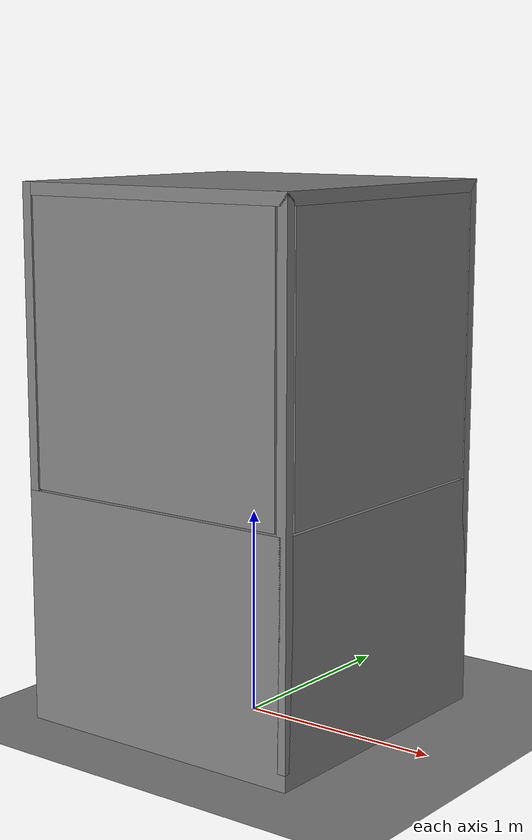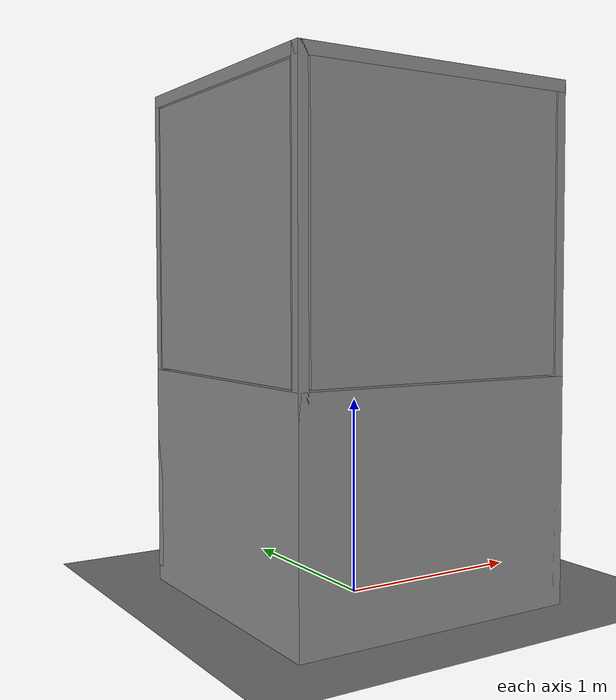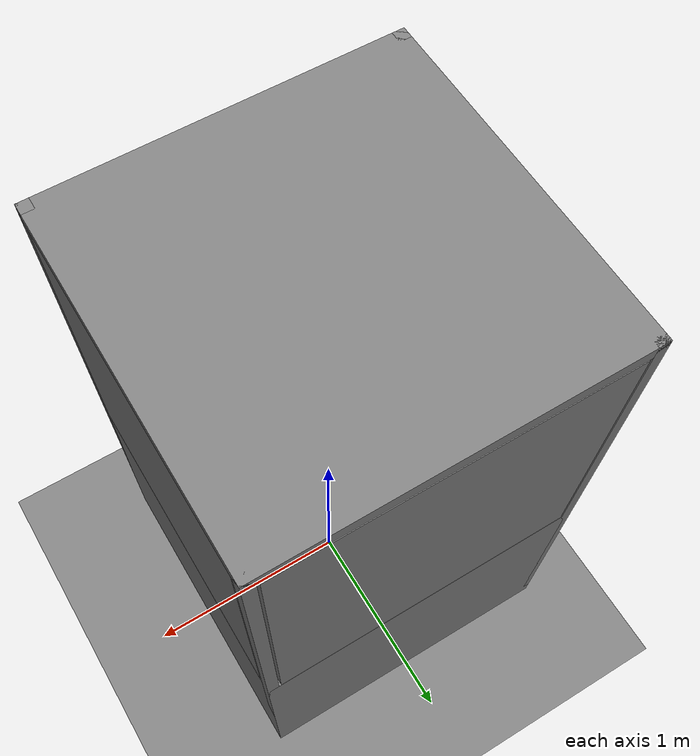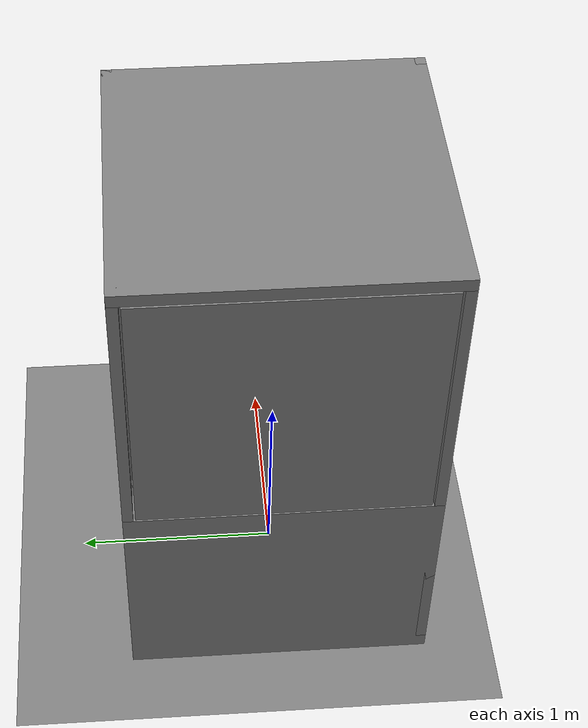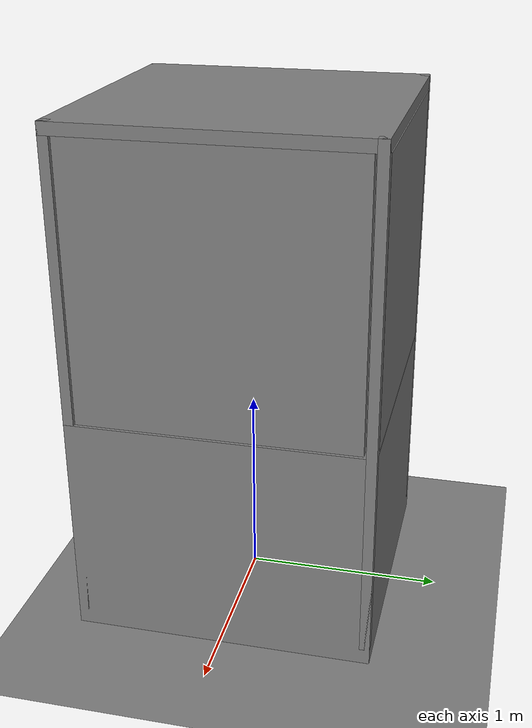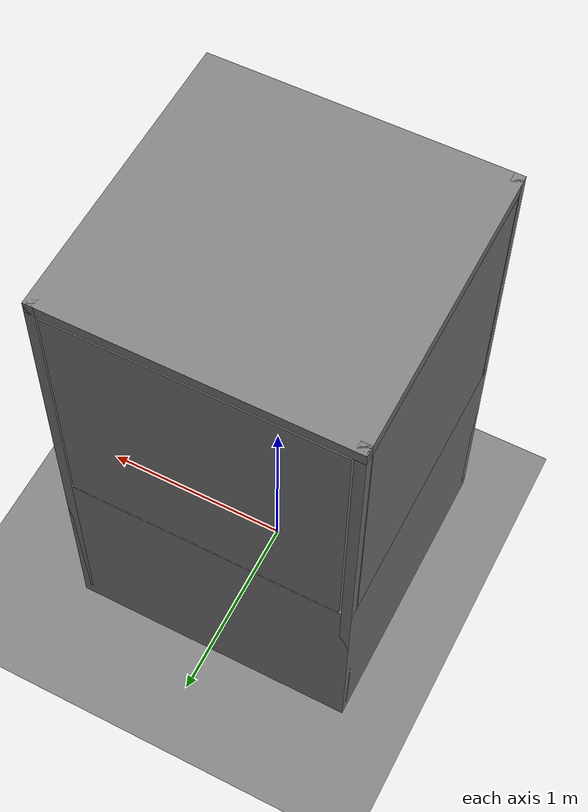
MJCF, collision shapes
<mujoco model="aic_world">
  <compiler angle="radian"/>

  <option gravity="0 0 -9.8" magnetic="5.5645e-06 2.28758e-05 -4.23884e-05"/>

  <visual>
    <headlight ambient="0 0 0" diffuse="0 0 0" specular="0 0 0"/>
  </visual>

  <default>
    <default class="world_default"/>
    <default class="cable_default">
      <joint damping="0.2"/>
    </default>
    <default class="sc_port_default">
      <geom friction="0.5 0.5"/>
    </default>
    <default class="nic_card_default">
      <geom friction="0.1 0.005 0.1"/>
    </default>
  </default>

  <extension>
    <plugin plugin="mujoco.elasticity.cable">
      <instance name="composite">
        <config key="twist" value="1e2"/>
        <config key="bend" value="4e1"/>
      </instance>
    </plugin>
  </extension>

  <asset>
    <texture type="2d" colorspace="linear" name="texture_40c09d03e70381a6858aaba3470a3c41133384b4031fa9131cbb5f4dc5cd3986_floor_visual_Plane" file="40c09d03e70381a6858aaba3470a3c41133384b4031fa9131cbb5f4dc5cd3986_floor_visual_b3a94635-54d6beff6424435d3828cb4c8a1278d9ea3964b0.png"/>
    <texture type="2d" colorspace="linear" name="texture_905de86c942092710a3b3b7c801a4a971c55ce1db8e8e66de2d222bccbf68920_sc_plug_visual_merged_0" file="905de86c942092710a3b3b7c801a4a971c55ce1db8e8e66de2d222bccbf68920_sc_plug_visual_5875f865-48f62b2f4840d852c7f39a01e6c183037dc1485b.png"/>
    <texture type="2d" colorspace="linear" name="texture_98c00f0bc914fd28942a5b5b497872ae817e62fdc7c7810ecaa8069a9692ceaf_lc_plug_visual_merged_0" file="98c00f0bc914fd28942a5b5b497872ae817e62fdc7c7810ecaa8069a9692ceaf_lc_plug_visual_03dabf32-0905e8a8aa368516e682f6ec84258100cdb4efef.png"/>
    <texture type="2d" colorspace="linear" name="texture_bac71237ef67393fcec4e1a5deb385aa5fe0d294b7e1711efc530aa1463ef5d6_sfp_module_visual_Body.005" file="bac71237ef67393fcec4e1a5deb385aa5fe0d294b7e1711efc530aa1463ef5d6_sfp_module_visual_8fc63b58-7471eafc55dcb668ae68adfe70a147b363ba3be9.png"/>
    <texture type="2d" colorspace="linear" name="texture_bac71237ef67393fcec4e1a5deb385aa5fe0d294b7e1711efc530aa1463ef5d6_sfp_module_visual_Body.005_1" file="bac71237ef67393fcec4e1a5deb385aa5fe0d294b7e1711efc530aa1463ef5d6_sfp_module_visual_1f09e86a-a4dc4a72bd6e778067310898a5c179607fd78966.png"/>
    <material name="material_e35a3160deff872a7475b59ee7dfb4969f85c5fc103de22f82442b320b077c85_enclosure_visual_V1014952.001" class="world_default" shininess="30" rgba="0.290196 0.290196 0.290196 1"/>
    <material name="material_e35a3160deff872a7475b59ee7dfb4969f85c5fc103de22f82442b320b077c85_enclosure_visual_V1014952.001_1" class="world_default" shininess="30" rgba="0.129412 0.129412 0.133333 1"/>
    <material name="material_e35a3160deff872a7475b59ee7dfb4969f85c5fc103de22f82442b320b077c85_light_visual_Plane.001" class="world_default" shininess="30" rgba="0.5 0.5 0.5 1"/>
    <material name="material_40c09d03e70381a6858aaba3470a3c41133384b4031fa9131cbb5f4dc5cd3986_floor_visual_Plane" class="world_default" texture="texture_40c09d03e70381a6858aaba3470a3c41133384b4031fa9131cbb5f4dc5cd3986_floor_visual_Plane" shininess="30" rgba="0.5 0.5 0.5 1"/>
    <material name="material_40c09d03e70381a6858aaba3470a3c41133384b4031fa9131cbb5f4dc5cd3986_walls_visual_Curve.001" class="world_default" shininess="30" rgba="0.0196078 0.0196078 0.0196078 1"/>
    <material name="material_40c09d03e70381a6858aaba3470a3c41133384b4031fa9131cbb5f4dc5cd3986_walls_visual_merged_1" class="world_default" shininess="30" rgba="0.262745 0.262745 0.262745 1"/>
    <material name="material_40c09d03e70381a6858aaba3470a3c41133384b4031fa9131cbb5f4dc5cd3986_walls_visual_Plane.003_1" class="world_default" shininess="30" rgba="0.8 0.8 0.8 1"/>
    <material name="material_40c09d03e70381a6858aaba3470a3c41133384b4031fa9131cbb5f4dc5cd3986_walls_visual_Plane.002" class="world_default" shininess="30" rgba="0.207843 0.207843 0.207843 1"/>
    <material name="material_7689a9b747d6b156977e79b2206b5e29540e3d66cde22b2879e5c8aaf9f30d90_base_visual_ISO_4762_-_M3_x_8.019" class="world_default" shininess="30" rgba="0.0352941 0.0352941 0.0313726 1"/>
    <material name="material_7689a9b747d6b156977e79b2206b5e29540e3d66cde22b2879e5c8aaf9f30d90_base_visual_ISO_4762_-_M3_x_8.019_1" class="world_default" shininess="30" rgba="0.0313726 0.0313726 0.0313726 1"/>
    <material name="material_7689a9b747d6b156977e79b2206b5e29540e3d66cde22b2879e5c8aaf9f30d90_base_visual_ISO_4762_-_M3_x_8.019_2" class="world_default" shininess="30" rgba="0.215686 0 0.215686 1"/>
    <material name="material_905de86c942092710a3b3b7c801a4a971c55ce1db8e8e66de2d222bccbf68920_sc_plug_visual_merged_0" class="world_default" texture="texture_905de86c942092710a3b3b7c801a4a971c55ce1db8e8e66de2d222bccbf68920_sc_plug_visual_merged_0" shininess="30" rgba="0.5 0.5 0.5 1"/>
    <material name="material_98c00f0bc914fd28942a5b5b497872ae817e62fdc7c7810ecaa8069a9692ceaf_lc_plug_visual_merged_0" class="world_default" texture="texture_98c00f0bc914fd28942a5b5b497872ae817e62fdc7c7810ecaa8069a9692ceaf_lc_plug_visual_merged_0" shininess="30" rgba="0.5 0.5 0.5 1"/>
    <material name="material_bac71237ef67393fcec4e1a5deb385aa5fe0d294b7e1711efc530aa1463ef5d6_sfp_module_visual_Body.005" class="world_default" texture="texture_bac71237ef67393fcec4e1a5deb385aa5fe0d294b7e1711efc530aa1463ef5d6_sfp_module_visual_Body.005" shininess="30" rgba="0.5 0.5 0.5 1"/>
    <material name="material_bac71237ef67393fcec4e1a5deb385aa5fe0d294b7e1711efc530aa1463ef5d6_sfp_module_visual_Body.005_1" class="world_default" texture="texture_bac71237ef67393fcec4e1a5deb385aa5fe0d294b7e1711efc530aa1463ef5d6_sfp_module_visual_Body.005_1" shininess="30" rgba="0.5 0.5 0.5 1"/>
    <mesh name="e35a3160deff872a7475b59ee7dfb4969f85c5fc103de22f82442b320b077c85_enclosure_visual_V1014952.001" class="world_default" content_type="model/obj" file="e35a3160deff872a7475b59ee7dfb4969f85c5fc103de22f82442b320b077c85_enclosure_visual_V1014952.001-c990efe7b9dfe87aa065fd6eb3960ce051ae2aef.obj" inertia="shell"/>
    <mesh name="e35a3160deff872a7475b59ee7dfb4969f85c5fc103de22f82442b320b077c85_enclosure_visual_V1014952.001_1" class="world_default" content_type="model/obj" file="e35a3160deff872a7475b59ee7dfb4969f85c5fc103de22f82442b320b077c85_enclosure_visual_V1014952.001_1-807e07de06af157c84b994a232617507a7059420.obj" inertia="shell"/>
    <mesh name="e35a3160deff872a7475b59ee7dfb4969f85c5fc103de22f82442b320b077c85_light_visual_Plane.001" class="world_default" content_type="model/obj" file="e35a3160deff872a7475b59ee7dfb4969f85c5fc103de22f82442b320b077c85_light_visual_Plane.001-a8a774a80bc239d73769a498eae528b206eebcb0.obj" inertia="shell"/>
    <mesh name="40c09d03e70381a6858aaba3470a3c41133384b4031fa9131cbb5f4dc5cd3986_floor_visual_Plane" class="world_default" content_type="model/obj" file="40c09d03e70381a6858aaba3470a3c41133384b4031fa9131cbb5f4dc5cd3986_floor_visual_Plane-4dc7f6150ad7c239769a0860a01efb2015657aea.obj" inertia="shell"/>
    <mesh name="40c09d03e70381a6858aaba3470a3c41133384b4031fa9131cbb5f4dc5cd3986_walls_visual_Curve.001" class="world_default" content_type="model/obj" file="40c09d03e70381a6858aaba3470a3c41133384b4031fa9131cbb5f4dc5cd3986_walls_visual_Curve.001-4d7c79ac2e958832fdb15589262141ca1b80d3a5.obj" inertia="shell"/>
    <mesh name="40c09d03e70381a6858aaba3470a3c41133384b4031fa9131cbb5f4dc5cd3986_walls_visual_merged_1" class="world_default" content_type="model/obj" file="40c09d03e70381a6858aaba3470a3c41133384b4031fa9131cbb5f4dc5cd3986_walls_visual_merged_1-359a22140d528747936e80bedf90e1437a177a9f.obj" inertia="shell"/>
    <mesh name="40c09d03e70381a6858aaba3470a3c41133384b4031fa9131cbb5f4dc5cd3986_walls_visual_Plane.003_1" class="world_default" content_type="model/obj" file="40c09d03e70381a6858aaba3470a3c41133384b4031fa9131cbb5f4dc5cd3986_walls_visual_Plane.003_1-cd05ed21fa19a2784fb772d7519abf7c31c8b85f.obj" inertia="shell"/>
    <mesh name="40c09d03e70381a6858aaba3470a3c41133384b4031fa9131cbb5f4dc5cd3986_walls_visual_Plane.002" class="world_default" content_type="model/obj" file="40c09d03e70381a6858aaba3470a3c41133384b4031fa9131cbb5f4dc5cd3986_walls_visual_Plane.002-ee4f781765eec46c2256d941981732d4b1857f24.obj" inertia="shell"/>
    <mesh name="7689a9b747d6b156977e79b2206b5e29540e3d66cde22b2879e5c8aaf9f30d90_base_visual_ISO_4762_-_M3_x_8.019" class="world_default" content_type="model/obj" file="7689a9b747d6b156977e79b2206b5e29540e3d66cde22b2879e5c8aaf9f30d90_base_visual_ISO_4762_-_M3_x_8.019-f814bb518c42769543ab6246809f3fe4af5c2b64.obj" inertia="shell"/>
    <mesh name="7689a9b747d6b156977e79b2206b5e29540e3d66cde22b2879e5c8aaf9f30d90_base_visual_ISO_4762_-_M3_x_8.019_1" class="world_default" content_type="model/obj" file="7689a9b747d6b156977e79b2206b5e29540e3d66cde22b2879e5c8aaf9f30d90_base_visual_ISO_4762_-_M3_x_8.019_1-0b276ba9910a7642121235b62d2afc47c3995782.obj" inertia="shell"/>
    <mesh name="7689a9b747d6b156977e79b2206b5e29540e3d66cde22b2879e5c8aaf9f30d90_base_visual_ISO_4762_-_M3_x_8.019_2" class="world_default" content_type="model/obj" file="7689a9b747d6b156977e79b2206b5e29540e3d66cde22b2879e5c8aaf9f30d90_base_visual_ISO_4762_-_M3_x_8.019_2-7b96569be9572803417c5650ee83c9c883b44191.obj" inertia="shell"/>
    <mesh name="905de86c942092710a3b3b7c801a4a971c55ce1db8e8e66de2d222bccbf68920_sc_plug_visual_merged_0" class="world_default" content_type="model/obj" file="905de86c942092710a3b3b7c801a4a971c55ce1db8e8e66de2d222bccbf68920_sc_plug_visual_merged_0-67f94accf247f722dd4954d7448d7956402901f2.obj" inertia="shell"/>
    <mesh name="98c00f0bc914fd28942a5b5b497872ae817e62fdc7c7810ecaa8069a9692ceaf_lc_plug_visual_merged_0" class="world_default" content_type="model/obj" file="98c00f0bc914fd28942a5b5b497872ae817e62fdc7c7810ecaa8069a9692ceaf_lc_plug_visual_merged_0-fdaf59710fc3cc118a7df05add4ff4205edda4ef.obj" inertia="shell"/>
    <mesh name="bac71237ef67393fcec4e1a5deb385aa5fe0d294b7e1711efc530aa1463ef5d6_sfp_module_visual_Body.005" class="world_default" content_type="model/obj" file="bac71237ef67393fcec4e1a5deb385aa5fe0d294b7e1711efc530aa1463ef5d6_sfp_module_visual_Body.005-f93147e1e403de321fb70c06a4b1e00f20feb9fd.obj" inertia="shell"/>
    <mesh name="bac71237ef67393fcec4e1a5deb385aa5fe0d294b7e1711efc530aa1463ef5d6_sfp_module_visual_Body.005_1" class="world_default" content_type="model/obj" file="bac71237ef67393fcec4e1a5deb385aa5fe0d294b7e1711efc530aa1463ef5d6_sfp_module_visual_Body.005_1-4af964a95522e2593eb6381eca4f09ef239782c7.obj" inertia="shell"/>
  </asset>

  <worldbody>
    <light name="enclosure_light" class="world_default" pos="0 0 2.5" dir="0 0 -1" intensity="0.4" range="2" attenuation="1 0.01 0.001" cutoff="114.592" exponent="0.993023" diffuse="1 1 1" specular="0.1 0.1 0.1"/>
    <light name="ceiling_01" class="world_default" pos="2 2 6" dir="0 0 -1" intensity="2" range="9" castshadow="false" attenuation="1 0.01 0.001" cutoff="360" diffuse="1 1 1" specular="0.1 0.1 0.1"/>
    <light name="ceiling_02" class="world_default" pos="-2 -2 6" dir="0 0 -1" intensity="2" range="9" castshadow="false" attenuation="1 0.01 0.001" cutoff="360" diffuse="1 1 1" specular="0.1 0.1 0.1"/>
    <body name="enclosure_link">
      <inertial pos="0 0 0" mass="1" diaginertia="1 1 1"/>
      <geom name="v1015026001_collider_box" class="world_default" size="0.75 0.569492 0.75" pos="-0.010998 0.009283 0.569706" quat="1.22475e-07 -1.22474e-07 0.707107 0.707107" type="box" group="3"/>
      <geom name="v1015028001_collider_box" class="world_default" size="0.0254 0.0254 1.25" pos="0.713602 0.733883 1.3292" quat="1.73205e-07 0 0 -1" type="box" group="3"/>
      <geom name="v1015013001_collider_box" class="world_default" size="0.0304 0.75 0.75" pos="-0.010998 0.009283 2.5488" quat="0.707107 0 -0.707107 0" type="box" group="3"/>
      <geom name="v1015027_collider_box" class="world_default" size="0.0254 0.0254 1.25" pos="-0.735598 0.733883 1.3292" quat="1.73205e-07 0 0 -1" type="box" group="3"/>
      <geom name="v1015029_collider_box" class="world_default" size="0.0254 0.0254 1.25" pos="-0.735598 -0.715317 1.3292" quat="0 1.73205e-07 -1 -1.73205e-07" type="box" group="3"/>
      <geom name="v1015030_collider_box" class="world_default" size="0.0254 0.0254 1.25" pos="0.713602 -0.715317 1.3292" quat="1.73205e-07 0 0 -1" type="box" group="3"/>
      <geom name="enclosure_visual" class="world_default" type="mesh" contype="0" conaffinity="0" material="material_e35a3160deff872a7475b59ee7dfb4969f85c5fc103de22f82442b320b077c85_enclosure_visual_V1014952.001" mesh="e35a3160deff872a7475b59ee7dfb4969f85c5fc103de22f82442b320b077c85_enclosure_visual_V1014952.001"/>
      <geom name="enclosure_visual_0" class="world_default" type="mesh" contype="0" conaffinity="0" material="material_e35a3160deff872a7475b59ee7dfb4969f85c5fc103de22f82442b320b077c85_enclosure_visual_V1014952.001_1" mesh="e35a3160deff872a7475b59ee7dfb4969f85c5fc103de22f82442b320b077c85_enclosure_visual_V1014952.001_1"/>
      <geom name="light_visual" class="world_default" type="mesh" contype="0" conaffinity="0" material="material_e35a3160deff872a7475b59ee7dfb4969f85c5fc103de22f82442b320b077c85_light_visual_Plane.001" mesh="e35a3160deff872a7475b59ee7dfb4969f85c5fc103de22f82442b320b077c85_light_visual_Plane.001"/>
    </body>
    <body name="enclosure_walls_link">
      <inertial pos="0 0 0" mass="1" diaginertia="1 1 1"/>
      <geom name="v1015062006_collider_box" class="world_default" size="0.0250005 0.6796 0.6892" pos="-0.010998 0.734284 1.8288" quat="0.5 0.5 -0.5 -0.5" type="box" group="3"/>
      <geom name="v1015062005_collider_box" class="world_default" size="0.6892 0.6796 0.025" pos="-0.735998 0.009283 1.8288" quat="0.5 0.5 -0.5 -0.5" type="box" group="3"/>
      <geom name="v1015062007_collider_box" class="world_default" size="0.025 0.6846 0.6892" pos="-0.010998 -0.715717 1.8338" quat="0.5 0.5 -0.5 -0.5" type="box" group="3"/>
      <geom name="v1015062008_collider_box" class="world_default" size="0.6892 0.6846 0.025" pos="0.714002 0.009283 1.8338" quat="0.5 0.5 -0.5 -0.5" type="box" group="3"/>
    </body>
    <body name="floor_link">
      <inertial pos="0 0 0" mass="1" diaginertia="1 1 1"/>
      <geom name="floor_cylinder" class="world_default" size="5 5 1" type="plane" group="3"/>
      <geom name="floor_visual" class="world_default" type="mesh" contype="0" conaffinity="0" material="material_40c09d03e70381a6858aaba3470a3c41133384b4031fa9131cbb5f4dc5cd3986_floor_visual_Plane" mesh="40c09d03e70381a6858aaba3470a3c41133384b4031fa9131cbb5f4dc5cd3986_floor_visual_Plane"/>
      <geom name="walls_visual" class="world_default" type="mesh" contype="0" conaffinity="0" material="material_40c09d03e70381a6858aaba3470a3c41133384b4031fa9131cbb5f4dc5cd3986_walls_visual_Curve.001" mesh="40c09d03e70381a6858aaba3470a3c41133384b4031fa9131cbb5f4dc5cd3986_walls_visual_Curve.001"/>
      <geom name="walls_visual_0" class="world_default" type="mesh" contype="0" conaffinity="0" material="material_40c09d03e70381a6858aaba3470a3c41133384b4031fa9131cbb5f4dc5cd3986_walls_visual_merged_1" mesh="40c09d03e70381a6858aaba3470a3c41133384b4031fa9131cbb5f4dc5cd3986_walls_visual_merged_1"/>
      <geom name="walls_visual_1" class="world_default" type="mesh" contype="0" conaffinity="0" material="material_40c09d03e70381a6858aaba3470a3c41133384b4031fa9131cbb5f4dc5cd3986_walls_visual_Plane.003_1" mesh="40c09d03e70381a6858aaba3470a3c41133384b4031fa9131cbb5f4dc5cd3986_walls_visual_Plane.003_1"/>
      <geom name="walls_visual_2" class="world_default" type="mesh" contype="0" conaffinity="0" material="material_40c09d03e70381a6858aaba3470a3c41133384b4031fa9131cbb5f4dc5cd3986_walls_visual_Plane.002" mesh="40c09d03e70381a6858aaba3470a3c41133384b4031fa9131cbb5f4dc5cd3986_walls_visual_Plane.002"/>
    </body>
    <body name="task_board_base_link" pos="0.15 -0.2 1.14" quat="4.63268e-05 0 0 1">
      <inertial pos="0 0 0" mass="5" diaginertia="0.1 0.1 0.1"/>
      <geom name="task_board_base_link_fixed_joint_lump__v1015083001_collider_box_left_collision" class="world_default" size="0.15 0.114 0.0045" pos="0 -0.1 0.0075" type="box" group="3"/>
      <geom name="task_board_base_link_fixed_joint_lump__v1015083001_collider_right_collision_1" class="world_default" size="0.15 0.0635 0.0045" pos="0 0.149 0.0075" type="box" group="3"/>
      <geom name="task_board_base_link_fixed_joint_lump__v1015083001_collider_mid_collision_2" class="world_default" size="0.07 0.006 0.0045" pos="-0.075 0.05 0.0075" type="box" group="3"/>
      <geom name="task_board_base_link_fixed_joint_lump__v1015083001_collider_bottom_collision_3" class="world_default" size="0.0825 0.2125 0.0045" pos="0.068 0 0.0075" type="box" group="3"/>
      <geom name="task_board_base_link_fixed_joint_lump__v1015083001_collider_top_collision_4" class="world_default" size="0.0075 0.2125 0.0045" pos="-0.143 0 0.0075" type="box" group="3"/>
      <geom name="task_board_base_link_fixed_joint_lump__base_visual_visual" class="world_default" type="mesh" contype="0" conaffinity="0" material="material_7689a9b747d6b156977e79b2206b5e29540e3d66cde22b2879e5c8aaf9f30d90_base_visual_ISO_4762_-_M3_x_8.019" mesh="7689a9b747d6b156977e79b2206b5e29540e3d66cde22b2879e5c8aaf9f30d90_base_visual_ISO_4762_-_M3_x_8.019"/>
      <geom name="task_board_base_link_fixed_joint_lump__base_visual_visual_0" class="world_default" type="mesh" contype="0" conaffinity="0" material="material_7689a9b747d6b156977e79b2206b5e29540e3d66cde22b2879e5c8aaf9f30d90_base_visual_ISO_4762_-_M3_x_8.019_1" mesh="7689a9b747d6b156977e79b2206b5e29540e3d66cde22b2879e5c8aaf9f30d90_base_visual_ISO_4762_-_M3_x_8.019_1"/>
      <geom name="task_board_base_link_fixed_joint_lump__base_visual_visual_1" class="world_default" type="mesh" contype="0" conaffinity="0" material="material_7689a9b747d6b156977e79b2206b5e29540e3d66cde22b2879e5c8aaf9f30d90_base_visual_ISO_4762_-_M3_x_8.019_2" mesh="7689a9b747d6b156977e79b2206b5e29540e3d66cde22b2879e5c8aaf9f30d90_base_visual_ISO_4762_-_M3_x_8.019_2"/>
    </body>
    <body name="cable_end_0" childclass="cable_default" pos="0.171400 0.020606 1.511889" quat="0.712741 0.312130 -0.052173 0.625982">
      <freejoint name="cable_end_0_free"/>
      <inertial pos="0 0 0" mass="0.0025" diaginertia="1e-6 1e-6 1e-6"/>
      <geom name="base_vis" class="world_default" size="0.002" contype="0" conaffinity="0"/>
      <plugin instance="composite"/>
      <body name="cable_connection_0" pos="-2.51823e-08 2.30342e-08 -1.45448e-07" quat="0.923929 -0.0911744 -0.331114 0.168542">
        <inertial pos="0 0 0" mass="0.01" diaginertia="1e-6 1e-6 1e-6"/>
        <joint name="joint_connection_end_0" class="world_default" pos="0 0 0" type="ball" damping="0.2"/>
        <geom name="visual_0_0" class="world_default" size="0.001 0.00180278" pos="-0.00180278 0.002 0" quat="0.676768 0.204909 0.676764 -0.204908" type="cylinder" contype="0" conaffinity="0"/>
        <geom name="visual_1_0" class="world_default" size="0.001 0.00180278" pos="-0.00180278 -0.002 0" quat="0.676768 -0.204909 0.676764 0.204908" type="cylinder" contype="0" conaffinity="0"/>
        <plugin instance="composite"/>
        <body name="link_1" pos="0.00184055 -0.00570813 -0.0232387" quat="-0.0695478 -0.267513 -0.955287 0.10501">
          <inertial pos="0 0 0" mass="0.0025" diaginertia="1e-6 1e-6 1e-6"/>
          <joint name="joint_end_0" pos="0 0 -0.024" type="ball"/>
          <geom name="link_1_collision" size="0.002 0.018" pos="0 0 0.006" type="cylinder" group="3"/>
          <geom name="sphere_1_collision" size="0.002" pos="0 0 0.024" group="3"/>
          <geom name="link_1_vis" size="0.002 0.024" type="cylinder" contype="0" conaffinity="0"/>
          <geom name="sphere_1_vis" size="0.002" pos="0 0 0.024" contype="0" conaffinity="0"/>
          <plugin instance="composite"/>
          <body name="link_2" pos="0.00619166 -0.007594 0.0459092" quat="0.977748 0.158888 0.135349 -0.021091">
            <inertial pos="0 0 0" mass="0.0025" diaginertia="1e-6 1e-6 1e-6"/>
            <joint name="joint_1" pos="0 0 -0.024" type="ball"/>
            <geom name="link_2_collision" size="0.002 0.024" type="cylinder" group="3"/>
            <geom name="sphere_2_collision" size="0.002" pos="0 0 0.024" group="3"/>
            <geom name="link_2_vis" size="0.002 0.024" type="cylinder" contype="0" conaffinity="0"/>
            <geom name="sphere_2_vis" size="0.002" pos="0 0 0.024" contype="0" conaffinity="0"/>
            <plugin instance="composite"/>
            <body name="link_3" pos="0.000453465 -0.00664208 0.0470584" quat="0.989911 0.139514 0.0125391 -0.0213206">
              <inertial pos="0 0 0" mass="0.0025" diaginertia="1e-6 1e-6 1e-6"/>
              <joint name="joint_2" pos="0 0 -0.024" type="ball"/>
              <geom name="link_3_collision" size="0.002 0.024" type="cylinder" group="3"/>
              <geom name="sphere_3_collision" size="0.002" pos="0 0 0.024" group="3"/>
              <geom name="link_3_vis" size="0.002 0.024" type="cylinder" contype="0" conaffinity="0"/>
              <geom name="sphere_3_vis" size="0.002" pos="0 0 0.024" contype="0" conaffinity="0"/>
              <plugin instance="composite"/>
              <body name="link_4" pos="-0.00213422 -0.0046216 0.0474541" quat="0.993997 0.0979034 -0.0423383 -0.0243497">
                <inertial pos="0 0 0" mass="0.0025" diaginertia="1e-6 1e-6 1e-6"/>
                <joint name="joint_3" pos="0 0 -0.024" type="ball"/>
                <geom name="link_4_collision" size="0.002 0.024" type="cylinder" group="3"/>
                <geom name="sphere_4_collision" size="0.002" pos="0 0 0.024" group="3"/>
                <geom name="link_4_vis" size="0.002 0.024" type="cylinder" contype="0" conaffinity="0"/>
                <geom name="sphere_4_vis" size="0.002" pos="0 0 0.024" contype="0" conaffinity="0"/>
                <plugin instance="composite"/>
                <body name="link_5" pos="-0.00362244 -0.00309285 0.0475231" quat="0.994224 0.0677278 -0.0732001 -0.0396564">
                  <inertial pos="0 0 0" mass="0.0025" diaginertia="1e-6 1e-6 1e-6"/>
                  <joint name="joint_4" pos="0 0 -0.024" type="ball"/>
                  <geom name="link_5_collision" size="0.002 0.024" type="cylinder" group="3"/>
                  <geom name="sphere_5_collision" size="0.002" pos="0 0 0.024" group="3"/>
                  <geom name="link_5_vis" size="0.002 0.024" type="cylinder" contype="0" conaffinity="0"/>
                  <geom name="sphere_5_vis" size="0.002" pos="0 0 0.024" contype="0" conaffinity="0"/>
                  <plugin instance="composite"/>
                  <body name="link_6" pos="-0.00395641 -0.00175917 0.0476065" quat="0.993905 0.0419546 -0.0802995 -0.0627996">
                    <inertial pos="0 0 0" mass="0.0025" diaginertia="1e-6 1e-6 1e-6"/>
                    <joint name="joint_5" pos="0 0 -0.024" type="ball"/>
                    <geom name="link_6_collision" size="0.002 0.024" type="cylinder" group="3"/>
                    <geom name="sphere_6_collision" size="0.002" pos="0 0 0.024" group="3"/>
                    <geom name="link_6_vis" size="0.002 0.024" type="cylinder" contype="0" conaffinity="0"/>
                    <geom name="sphere_6_vis" size="0.002" pos="0 0 0.024" contype="0" conaffinity="0"/>
                    <plugin instance="composite"/>
                    <body name="link_7" pos="-0.00349799 -0.000692972 0.0477341" quat="0.993477 0.0207436 -0.0715523 -0.0863283">
                      <inertial pos="0 0 0" mass="0.0025" diaginertia="1e-6 1e-6 1e-6"/>
                      <joint name="joint_6" pos="0 0 -0.024" type="ball"/>
                      <geom name="link_7_collision" size="0.002 0.024" type="cylinder" group="3"/>
                      <geom name="sphere_7_collision" size="0.002" pos="0 0 0.024" group="3"/>
                      <geom name="link_7_vis" size="0.002 0.024" type="cylinder" contype="0" conaffinity="0"/>
                      <geom name="sphere_7_vis" size="0.002" pos="0 0 0.024" contype="0" conaffinity="0"/>
                      <plugin instance="composite"/>
                      <body name="link_8" pos="-0.00243347 0.000187096 0.0478763" quat="0.9935 0.00128573 -0.0509006 -0.101812">
                        <inertial pos="0 0 0" mass="0.0025" diaginertia="1e-6 1e-6 1e-6"/>
                        <joint name="joint_7" pos="0 0 -0.024" type="ball"/>
                        <geom name="link_8_collision" size="0.002 0.024" type="cylinder" group="3"/>
                        <geom name="sphere_8_collision" size="0.002" pos="0 0 0.024" group="3"/>
                        <geom name="link_8_vis" size="0.002 0.024" type="cylinder" contype="0" conaffinity="0"/>
                        <geom name="sphere_8_vis" size="0.002" pos="0 0 0.024" contype="0" conaffinity="0"/>
                        <plugin instance="composite"/>
                        <body name="link_9" pos="-0.00122243 0.000954258 0.0479511" quat="0.994042 -0.017131 -0.0274124 -0.104092">
                          <inertial pos="0 0 0" mass="0.0025" diaginertia="1e-6 1e-6 1e-6"/>
                          <joint name="joint_8" pos="0 0 -0.024" type="ball"/>
                          <geom name="link_9_collision" size="0.002 0.024" type="cylinder" group="3"/>
                          <geom name="sphere_9_collision" size="0.002" pos="0 0 0.024" group="3"/>
                          <geom name="link_9_vis" size="0.002 0.024" type="cylinder" contype="0" conaffinity="0"/>
                          <geom name="sphere_9_vis" size="0.002" pos="0 0 0.024" contype="0" conaffinity="0"/>
                          <plugin instance="composite"/>
                          <body name="link_10" pos="-0.000355132 0.00167421 0.0479391" quat="0.994816 -0.0340205 -0.0107017 -0.0952336">
                            <inertial pos="0 0 0" mass="0.0025" diaginertia="1e-6 1e-6 1e-6"/>
                            <joint name="joint_9" pos="0 0 -0.024" type="ball"/>
                            <geom name="link_10_collision" size="0.002 0.024" type="cylinder" group="3"/>
                            <geom name="sphere_10_collision" size="0.002" pos="0 0 0.024" group="3"/>
                            <geom name="link_10_vis" size="0.002 0.024" type="cylinder" contype="0" conaffinity="0"/>
                            <geom name="sphere_10_vis" size="0.002" pos="0 0 0.024" contype="0" conaffinity="0"/>
                            <plugin instance="composite"/>
                            <body name="link_11" pos="0.00118961 0.0025498 0.0478357" quat="0.994081 -0.0552609 0.0198395 -0.0914086">
                              <inertial pos="0 0 0" mass="0.0025" diaginertia="1e-6 1e-6 1e-6"/>
                              <joint name="joint_10" pos="0 0 -0.024" type="ball"/>
                              <geom name="link_11_collision" size="0.002 0.024" type="cylinder" group="3"/>
                              <geom name="sphere_11_collision" size="0.002" pos="0 0 0.024" group="3"/>
                              <geom name="link_11_vis" size="0.002 0.024" type="cylinder" contype="0" conaffinity="0"/>
                              <geom name="sphere_11_vis" size="0.002" pos="0 0 0.024" contype="0" conaffinity="0"/>
                              <plugin instance="composite"/>
                              <body name="link_12" pos="0.00318571 0.00405833 0.0474406" quat="0.991805 -0.08942 0.060775 -0.0680681">
                                <inertial pos="0 0 0" mass="0.0025" diaginertia="1e-6 1e-6 1e-6"/>
                                <joint name="joint_11" pos="0 0 -0.024" type="ball"/>
                                <geom name="link_12_collision" size="0.002 0.024" type="cylinder" group="3"/>
                                <geom name="sphere_12_collision" size="0.002" pos="0 0 0.024" group="3"/>
                                <geom name="link_12_vis" size="0.002 0.024" type="cylinder" contype="0" conaffinity="0"/>
                                <geom name="sphere_12_vis" size="0.002" pos="0 0 0.024" contype="0" conaffinity="0"/>
                                <plugin instance="composite"/>
                                <body name="link_13" pos="0.00474312 0.00581226 0.0467979" quat="0.986544 -0.126678 0.094879 -0.0410051">
                                  <inertial pos="0 0 0" mass="0.0025" diaginertia="1e-6 1e-6 1e-6"/>
                                  <joint name="joint_12" pos="0 0 -0.024" type="ball"/>
                                  <geom name="link_13_collision" size="0.002 0.024" type="cylinder" group="3"/>
                                  <geom name="sphere_13_collision" size="0.002" pos="0 0 0.024" group="3"/>
                                  <geom name="link_13_vis" size="0.002 0.024" type="cylinder" contype="0" conaffinity="0"/>
                                  <geom name="sphere_13_vis" size="0.002" pos="0 0 0.024" contype="0" conaffinity="0"/>
                                  <plugin instance="composite"/>
                                  <body name="link_14" pos="0.00583709 0.00735623 0.0460876" quat="0.979761 -0.158202 0.121792 -0.0143789">
                                    <inertial pos="0 0 0" mass="0.0025" diaginertia="1e-6 1e-6 1e-6"/>
                                    <joint name="joint_13" pos="0 0 -0.024" type="ball"/>
                                    <geom name="link_14_collision" size="0.002 0.024" type="cylinder" group="3"/>
                                    <geom name="sphere_14_collision" size="0.002" pos="0 0 0.024" group="3"/>
                                    <geom name="link_14_vis" size="0.002 0.024" type="cylinder" contype="0" conaffinity="0"/>
                                    <geom name="sphere_14_vis" size="0.002" pos="0 0 0.024" contype="0" conaffinity="0"/>
                                    <plugin instance="composite"/>
                                    <body name="link_15" pos="0.00656851 0.00807907 0.0456243" quat="0.974892 -0.171279 0.141991 0.00935219">
                                      <inertial pos="0 0 0" mass="0.0025" diaginertia="1e-6 1e-6 1e-6"/>
                                      <joint name="joint_14" pos="0 0 -0.024" type="ball"/>
                                      <geom name="link_15_collision" size="0.002 0.024" type="cylinder" group="3"/>
                                      <geom name="sphere_15_collision" size="0.002" pos="0 0 0.024" group="3"/>
                                      <geom name="link_15_vis" size="0.002 0.024" type="cylinder" contype="0" conaffinity="0"/>
                                      <geom name="sphere_15_vis" size="0.002" pos="0 0 0.024" contype="0" conaffinity="0"/>
                                      <plugin instance="composite"/>
                                      <body name="link_16" pos="0.0068571 0.00761915 0.0457024" quat="0.975354 -0.158433 0.151003 0.0279416">
                                        <inertial pos="0 0 0" mass="0.0025" diaginertia="1e-6 1e-6 1e-6"/>
                                        <joint name="joint_15" pos="0 0 -0.024" type="ball"/>
                                        <geom name="link_16_collision" size="0.002 0.024" type="cylinder" group="3"/>
                                        <geom name="sphere_16_collision" size="0.002" pos="0 0 0.024" group="3"/>
                                        <geom name="link_16_vis" size="0.002 0.024" type="cylinder" contype="0" conaffinity="0"/>
                                        <geom name="sphere_16_vis" size="0.002" pos="0 0 0.024" contype="0" conaffinity="0"/>
                                        <plugin instance="composite"/>
                                        <body name="link_17" pos="0.00677513 0.00603483 0.0462207" quat="0.980465 -0.122145 0.148914 0.0399162">
                                          <inertial pos="0 0 0" mass="0.0025" diaginertia="1e-6 1e-6 1e-6"/>
                                          <joint name="joint_16" pos="0 0 -0.024" type="ball"/>
                                          <geom name="link_17_collision" size="0.002 0.024" type="cylinder" group="3"/>
                                          <geom name="sphere_17_collision" size="0.002" pos="0 0 0.024" group="3"/>
                                          <geom name="link_17_vis" size="0.002 0.024" type="cylinder" contype="0" conaffinity="0"/>
                                          <geom name="sphere_17_vis" size="0.002" pos="0 0 0.024" contype="0" conaffinity="0"/>
                                          <plugin instance="composite"/>
                                          <body name="link_18" pos="0.006417 0.0035907 0.0468459" quat="0.986928 -0.0696099 0.13856 0.0439204">
                                            <inertial pos="0 0 0" mass="0.0025" diaginertia="1e-6 1e-6 1e-6"/>
                                            <joint name="joint_17" pos="0 0 -0.024" type="ball"/>
                                            <geom name="link_18_collision" size="0.002 0.024" type="cylinder" group="3"/>
                                            <geom name="sphere_18_collision" size="0.002" pos="0 0 0.024" group="3"/>
                                            <geom name="link_18_vis" size="0.002 0.024" type="cylinder" contype="0" conaffinity="0"/>
                                            <geom name="sphere_18_vis" size="0.002" pos="0 0 0.024" contype="0" conaffinity="0"/>
                                            <plugin instance="composite"/>
                                            <body name="link_19" pos="0.00642662 0.00141794 0.0470814" quat="0.989625 -0.0245773 0.136245 0.0384068">
                                              <inertial pos="0 0 0" mass="0.0025" diaginertia="1e-6 1e-6 1e-6"/>
                                              <joint name="joint_18" pos="0 0 -0.024" type="ball"/>
                                              <geom name="link_19_collision" size="0.002 0.024" type="cylinder" group="3"/>
                                              <geom name="sphere_19_collision" size="0.002" pos="0 0 0.024" group="3"/>
                                              <geom name="link_19_vis" size="0.002 0.024" type="cylinder" contype="0" conaffinity="0"/>
                                              <geom name="sphere_19_vis" size="0.002" pos="0 0 0.024" contype="0" conaffinity="0"/>
                                              <plugin instance="composite"/>
                                              <body name="link_20" pos="0.0059676 -0.00101977 0.0472259" quat="0.991487 0.0249643 0.124671 0.0280479">
                                                <inertial pos="0 0 0" mass="0.0025" diaginertia="1e-6 1e-6 1e-6"/>
                                                <joint name="joint_19" pos="0 0 -0.024" type="ball"/>
                                                <geom name="link_20_collision" size="0.002 0.024" type="cylinder" group="3"/>
                                                <geom name="sphere_20_collision" size="0.002" pos="0 0 0.024" group="3"/>
                                                <geom name="link_20_vis" size="0.002 0.024" type="cylinder" contype="0" conaffinity="0"/>
                                                <geom name="sphere_20_vis" size="0.002" pos="0 0 0.024" contype="0" conaffinity="0"/>
                                                <plugin instance="composite"/>
                                                <body name="cable_connection_1" pos="1.04765e-06 -3.88165e-07 0.0240001" quat="0.778256 0.058659 -0.623948 -0.0395561">
                                                  <inertial pos="0 0 0" mass="0.01" diaginertia="1e-6 1e-6 1e-6"/>
                                                  <joint name="joint_connection_end_1" class="world_default" pos="0 0 0" type="ball"/>
                                                  <geom name="collision_0" class="world_default" size="0.001 0.00367636" pos="0.00367636 -0.00425 0" quat="0.673802 0.214463 0.673798 -0.214461" type="cylinder" group="3"/>
                                                  <geom name="collision_1" class="world_default" size="0.001 0.00367636" pos="0.00367636 0.00425 0" quat="0.673802 -0.214463 0.673798 0.214461" type="cylinder" group="3"/>
                                                  <geom name="visual_0" class="world_default" size="0.001 0.00367636" pos="0.00367636 -0.00425 0" quat="0.673802 0.214463 0.673798 -0.214461" type="cylinder" contype="0" conaffinity="0"/>
                                                  <geom name="visual_1" class="world_default" size="0.001 0.00367636" pos="0.00367636 0.00425 0" quat="0.673802 -0.214463 0.673798 0.214461" type="cylinder" contype="0" conaffinity="0"/>
                                                  <plugin instance="composite"/>
                                                  <body name="sc_plug_link" pos="0.052 6.25358e-08 6.87613e-08" quat="1 1.44978e-07 -7.34407e-09 -6.12369e-08">
                                                    <inertial pos="-0.00907511 4.9566e-05 8.71699e-06" quat="0.000872542 0.70691 -0.000868656 0.707302" mass="0.04" diaginertia="8.85404e-06 7.17322e-06 2.12253e-06"/>
                                                    <geom name="housing blue_predeterminado005_collider_box" class="world_default" size="0.0063605 0.0045 0.00365" pos="0.002038 0.006344 4e-06" type="box" group="3"/>
                                                    <geom name="housing blue_predeterminado005_collider_box.001" class="world_default" size="0.0063605 0.0045 0.00365" pos="0.002038 -0.006344 4e-06" type="box" group="3"/>
                                                    <geom name="housing blue_predeterminado005_collider_box.002" class="world_default" size="0.006861 0.0035 0.00365" pos="0.002539 0.006344 4e-06" type="box" group="3"/>
                                                    <geom name="housing blue_predeterminado005_collider_box.003" class="world_default" size="0.006861 0.0035 0.00365" pos="0.002539 -0.006344 4e-06" type="box" group="3"/>
                                                    <geom name="housing blue_predeterminado005_collider_box.004" class="world_default" size="0.001 0.000705 0.00365" pos="0.008191 0.003056 4e-06" quat="0.92388 0 0 -0.382683" type="box" group="3"/>
                                                    <geom name="housing blue_predeterminado005_collider_box.005" class="world_default" size="0.001 0.000705 0.00365" pos="0.008191 0.009636 4e-06" quat="0.92388 0 0 0.382683" type="box" group="3"/>
                                                    <geom name="housing blue_predeterminado005_collider_box.006" class="world_default" size="0.001 0.000705 0.00365" pos="0.008191 -0.009636 4e-06" quat="0.92388 0 0 -0.382683" type="box" group="3"/>
                                                    <geom name="housing blue_predeterminado005_collider_box.007" class="world_default" size="0.001 0.000705 0.00365" pos="0.008191 -0.003056 4e-06" quat="0.92388 0 0 0.382683" type="box" group="3"/>
                                                    <geom name="cube002_collider_box" class="world_default" size="0.006275 0.0125 0.00505" pos="-0.010291 0 0" type="box" group="3"/>
                                                    <geom name="cylinder011_collider_cylinder" class="world_default" size="0.0029 0.014605" pos="-0.031147 -0.00635 0" quat="0.707107 0 0.707107 0" type="cylinder" group="3"/>
                                                    <geom name="cylinder005_collider_cylinder" class="world_default" size="0.0029 0.015799" pos="-0.029953 0.00635 0" quat="0.707107 0 0.707107 0" type="cylinder" group="3"/>
                                                    <geom name="ferula_predeterminado005_collider_cylinder" class="world_default" size="0.00125 0.007" pos="0.00465 -0.00635 0" quat="0.707107 0 0.707107 0" type="cylinder" group="3"/>
                                                    <geom name="ferula_predeterminado003_collider_cylinder" class="world_default" size="0.00125 0.007" pos="0.00465 0.00635 0" quat="0.707107 0 0.707107 0" type="cylinder" group="3"/>
                                                    <geom name="side_box_collision" class="world_default" size="0.002125 0.00081 0.0005" pos="0.00146 -0.00632 0.0042" type="box" group="3"/>
                                                    <geom name="side_box_collision_2" class="world_default" size="0.002125 0.00081 0.0005" pos="0.00146 0.00632 0.0042" type="box" group="3"/>
                                                    <geom name="sc_plug_visual" class="world_default" type="mesh" contype="0" conaffinity="0" material="material_905de86c942092710a3b3b7c801a4a971c55ce1db8e8e66de2d222bccbf68920_sc_plug_visual_merged_0" mesh="905de86c942092710a3b3b7c801a4a971c55ce1db8e8e66de2d222bccbf68920_sc_plug_visual_merged_0"/>
                                                    <body name="sc_tip_link" pos="0.0116502 -1.03181e-07 -8.34631e-08" quat="0.499998 -0.5 0.500001 -0.5">
                                                      <inertial pos="0 0 0" mass="0.001" diaginertia="1e-06 1e-06 1e-06"/>
                                                    </body>
                                                  </body>
                                                </body>
                                              </body>
                                            </body>
                                          </body>
                                        </body>
                                      </body>
                                    </body>
                                  </body>
                                </body>
                              </body>
                            </body>
                          </body>
                        </body>
                      </body>
                    </body>
                  </body>
                </body>
              </body>
            </body>
          </body>
        </body>
        <body name="lc_plug_link" pos="-0.041 1.44621e-08 7.16164e-09" quat="0.707109 9.61838e-09 9.87618e-08 0.707104">
          <inertial pos="0 0.0197 0" quat="0 0.707107 0 0.707107" mass="0.01" diaginertia="1.06153e-07 9.96094e-08 8.49658e-09"/>
          <geom name="cylinder001_collider_cylinder.001" class="world_default" size="0.000625 0.001502" pos="0.003125 0.0197 0" quat="0.707107 0.707107 0 0" type="cylinder" group="3"/>
          <geom name="cylinder_collider_cylinder.001" class="world_default" size="0.000625 0.001502" pos="-0.003125 0.0197 0" quat="0.707107 0.707107 0 0" type="cylinder" group="3"/>
          <geom name="lc_plug_visual" class="world_default" type="mesh" contype="0" conaffinity="0" material="material_98c00f0bc914fd28942a5b5b497872ae817e62fdc7c7810ecaa8069a9692ceaf_lc_plug_visual_merged_0" mesh="98c00f0bc914fd28942a5b5b497872ae817e62fdc7c7810ecaa8069a9692ceaf_lc_plug_visual_merged_0"/>
          <body name="sfp_module_link" pos="1.03453e-09 0.0384 3.45352e-09" quat="3.74567e-08 1 -1.31683e-06 -1.34002e-06">
            <inertial pos="0.00024115 0.00702224 0.000553372" quat="0.510037 0.497012 -0.483415 0.50907" mass="0.02" diaginertia="3.07513e-06 2.81054e-06 5.69919e-07"/>
            <geom name="port_collider_box.008" class="world_default" size="0.00071 0.000503 0.0064415" pos="-0.00571 0.018813 -0.003546" quat="0.707107 0.707107 0 0" type="box" group="3"/>
            <geom name="port_collider_box.009" class="world_default" size="0.00071 0.000503 0.0064415" pos="0.00571 0.018813 -0.003546" quat="0.707107 0.707107 0 0" type="box" group="3"/>
            <geom name="body_collider_box" class="world_default" size="0.006875 0.02365 0.0003945" pos="0 0.001 0.00383" type="box" group="3"/>
            <geom name="body_collider_box.001" class="world_default" size="0.006875 0.02365 8.9e-05" pos="0 0.001 -0.004138" type="box" group="3"/>
            <geom name="body_collider_box.002" class="world_default" size="0.000287 0.02365 0.004225" pos="-0.006588 0.001 0" type="box" group="3"/>
            <geom name="body_collider_box.003" class="world_default" size="0.0004055 0.02365 0.004225" pos="0.00647 0.001 0" type="box" group="3"/>
            <geom name="port_collider_box.010" class="world_default" size="0.00642 0.0038815 0.0058645" pos="0 0.01229 0.000119" quat="0.707107 0.707107 0 0" type="box" group="3"/>
            <geom name="port_collider_box002_collider_box" class="world_default" size="0.00642 0.0002045 0.0008005" pos="0 0.024453 -0.004254" quat="0.707107 0.707107 0 0" type="box" group="3"/>
            <geom name="port_collider_box.011" class="world_default" size="0.00125 0.000503 0.0064415" pos="0 0.018813 -0.003546" quat="0.707107 0.707107 0 0" type="box" group="3"/>
            <geom name="sfp_module_visual" class="world_default" type="mesh" contype="0" conaffinity="0" material="material_bac71237ef67393fcec4e1a5deb385aa5fe0d294b7e1711efc530aa1463ef5d6_sfp_module_visual_Body.005" mesh="bac71237ef67393fcec4e1a5deb385aa5fe0d294b7e1711efc530aa1463ef5d6_sfp_module_visual_Body.005"/>
            <geom name="sfp_module_visual_0" class="world_default" type="mesh" contype="0" conaffinity="0" material="material_bac71237ef67393fcec4e1a5deb385aa5fe0d294b7e1711efc530aa1463ef5d6_sfp_module_visual_Body.005_1" mesh="bac71237ef67393fcec4e1a5deb385aa5fe0d294b7e1711efc530aa1463ef5d6_sfp_module_visual_Body.005_1"/>
            <body name="sfp_tip_link" pos="4.18171e-09 -0.02365 -3.36044e-10" quat="0.707105 0.707108 -4.23885e-08 -7.30162e-08">
              <inertial pos="0 0 0" mass="0.001" diaginertia="1e-06 1e-06 1e-06"/>
              <geom name="contact_collision" class="world_default" size="0.006875 0.0021125 0.0005" pos="0 0.0021125 -0.0005" type="box" group="3"/>
              <geom name="non_contact_collision" class="world_default" size="0.006875 0.0021125 0.0005" pos="0 -0.0021125 -0.0005" type="box" group="3"/>
            </body>
          </body>
        </body>
      </body>
    </body>
    <body name="static_link">
      <inertial pos="0 0 0" mass="1" diaginertia="1 1 1"/>
    </body>
    <body name="static_link_0">
      <inertial pos="0 0 0" mass="1" diaginertia="1 1 1"/>
    </body>
  </worldbody>

  <contact>
    <exclude body1="cable_end_0" body2="link_1"/>
  </contact>

  <equality>
    <weld body1="ati/tool_link" body2="lc_plug_link" relpose="-0.000711 0.001759 0.168213 0.577301 0.816105 -0.021418 -0.015395" solref="0.002 1" solimp="0.99 0.999 0.001"/>
  </equality>
</mujoco>
